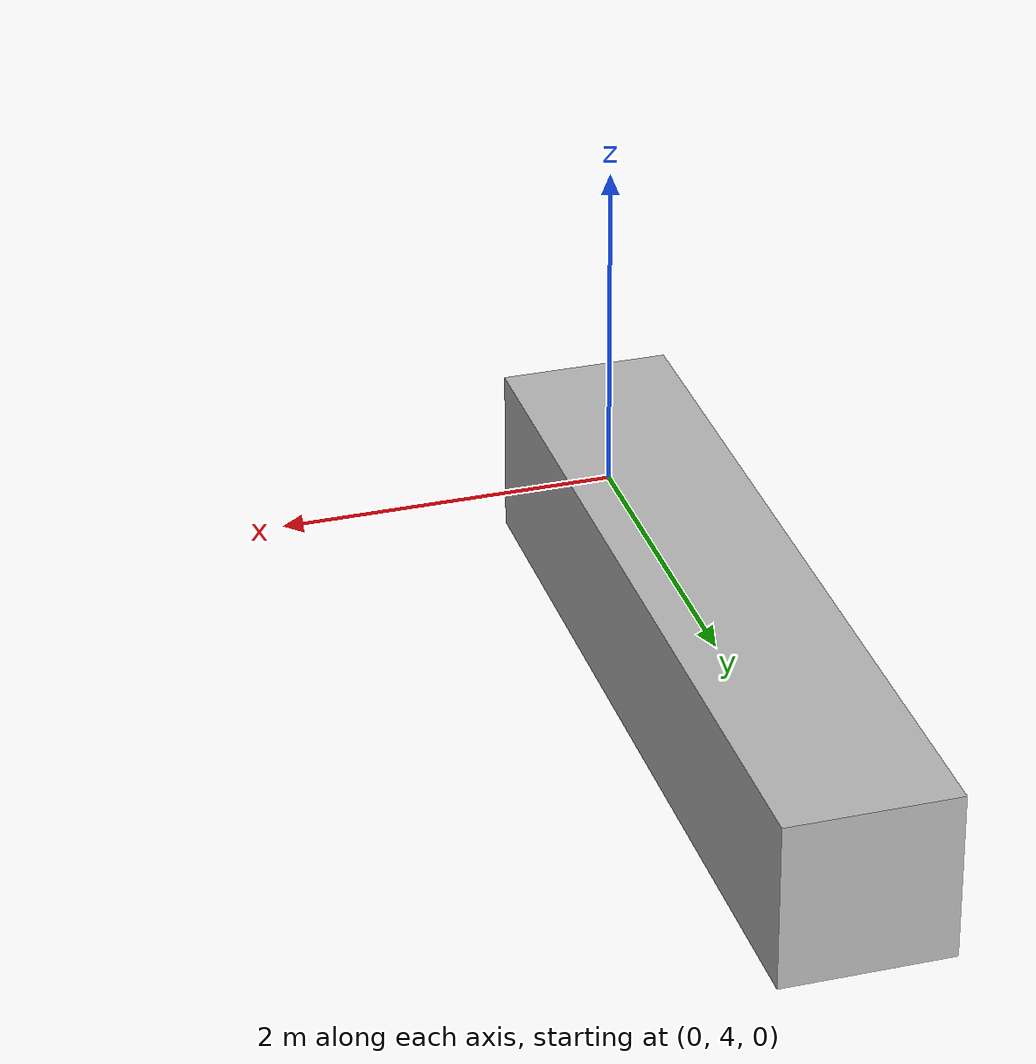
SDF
<?xml version="1.0"?>
<sdf version='1.4'>
  <model name='myfirst'>
   <pose>0 6 0 0 0 0</pose>
    <link name='myfirst_link'>
      <collision name="collision">
          <geometry>
            <box>
              <size>1 5 1</size>
            </box>
          </geometry>
        </collision>

	<visual name="visual">
          <geometry>
            <box>
              <size>1 5 1</size>
            </box>
          </geometry>
        </visual>
    </link>

  </model>
</sdf>
